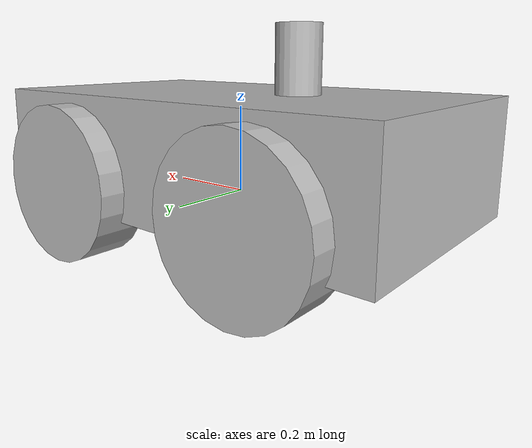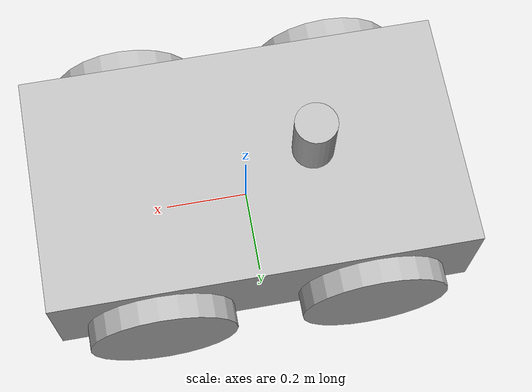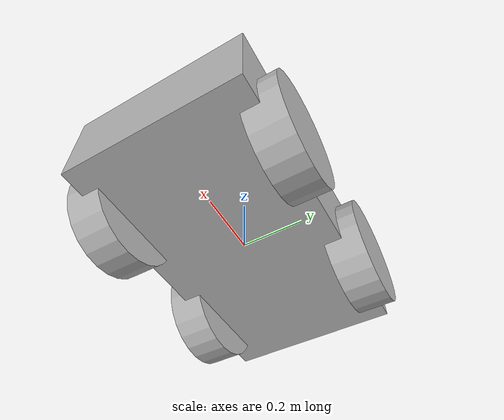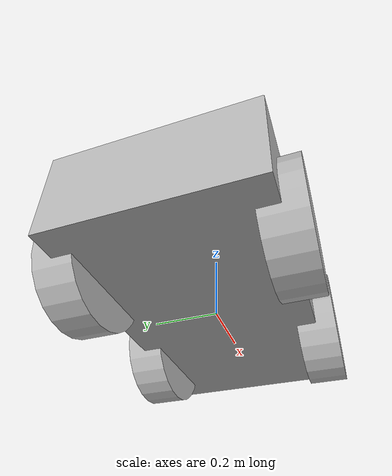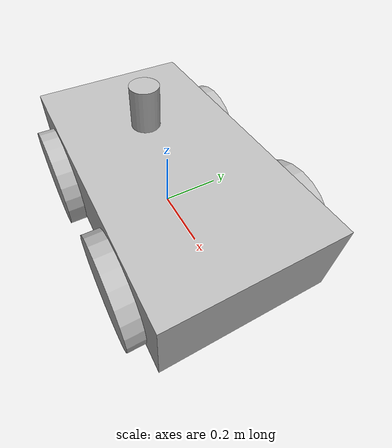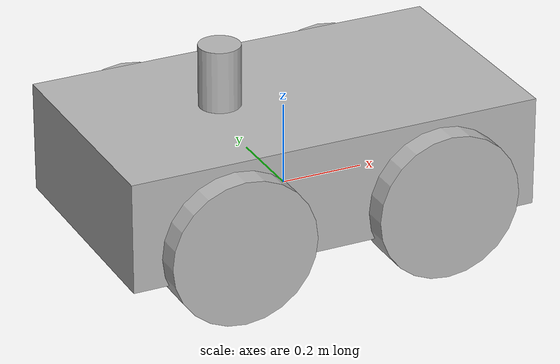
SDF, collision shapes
<?xml version="1.0" ?>
<sdf version="1.5">
  <model name="husky">
    <!-- old values left for reference -->
    <pose>0 0 0 0 0 0</pose>
    <!-- Main Chassis -->
    <link name="base_link">
      <!-- Physics -->
      <collision name="collision">
        <pose>0 0 0.1 0 0 0</pose>
        <geometry>
          <box>
            <size>1.0074 0.5709 0.2675</size>
          </box>
        </geometry>
      </collision>
      <inertial>
        <mass>33.855</mass>
        <pose>-0.0856132 -0.000839955 0.238145 0 0 0</pose>
        <inertia>
          <ixx>2.2343</ixx>
          <ixy>-0.023642</ixy>
          <ixz>0.275174</ixz>
          <iyy>3.42518</iyy>
          <iyz>0.00239624</iyz>
          <izz>2.1241</izz>
        </inertia>
      </inertial>
      <!-- Visual -->
      <!-- Base frame -->
      <visual name="body">
        <pose>0 0 0 0 0 0</pose>
        <geometry>
          <mesh>
            <uri>model://husky_model/meshes/body.dae</uri>
          </mesh>
        </geometry>
      </visual>
    </link>

    <!-- Back Left Wheel -->
    <link name="back_left_wheel">
      <pose>-0.256 0.285475 0.035 0 0 0</pose>
      <inertial>
        <mass>2.6357</mass>
        <pose>0 0 0 0 0 0</pose>
        <inertia>
          <ixx>0.0246688</ixx>
          <ixy>0</ixy>
          <ixz>0</ixz>
          <iyy>0.0246688</iyy>
          <iyz>0</iyz>
          <izz>0.0441058</izz>
        </inertia>
      </inertial>
      <collision name="back_left_wheel_collision">
        <pose>0 0 0 -1.5707 0 0</pose>
        <geometry>
          <cylinder>
            <radius>0.17775</radius>
            <length>0.1143</length>
          </cylinder>
        </geometry>
        <surface>
          <friction>
            <ode>
              <mu>100000.0</mu>
              <mu2>100000.0</mu2>
              <slip1>0.0</slip1>
              <slip2>0.0</slip2>
            </ode>
          </friction>
        </surface>
      </collision>
      <visual name="back_left_wheel">
        <pose>0 0 0 0 0 0</pose>
        <geometry>
          <mesh>
            <uri>model://husky_model/meshes/wheel.dae</uri>
          </mesh>
        </geometry>
      </visual>
    </link>
    <joint name="back_left_joint" type="revolute">
      <sensor name="back_left_sensor" type="force_torque"><force_torque></force_torque></sensor>
      <parent>base_link</parent>
      <child>back_left_wheel</child>
      <axis>
        <xyz>0 1 0</xyz>
        <use_parent_model_frame>true</use_parent_model_frame>
      </axis>
      <physics>
        <provide_feedback>true</provide_feedback>
        <ode>
          <limit>
            <cfm>0.000000</cfm>
            <erp>0.900000</erp>
          </limit>
        </ode>
      </physics>
    </joint>

    <!-- Back Right Wheel -->
    <link name="back_right_wheel">
      <pose>-0.256 -0.285475 0.035 0 0 0</pose>
      <inertial>
        <mass>2.6357</mass>
        <pose>0 0 0 0 0 0</pose>
        <inertia>
          <ixx>0.0246688</ixx>
          <ixy>0</ixy>
          <ixz>0</ixz>
          <iyy>0.0246688</iyy>
          <iyz>0</iyz>
          <izz>0.0441058</izz>
        </inertia>
      </inertial>
      <collision name="back_right_wheel_collision">
        <pose>0 0 0 -1.5707 0 0</pose>
        <geometry>
          <cylinder>
            <radius>0.17775</radius>
            <length>0.1143</length>
          </cylinder>
        </geometry>
        <surface>
          <friction>
            <ode>
              <mu>100000.0</mu>
              <mu2>100000.0</mu2>
              <slip1>0.0</slip1>
              <slip2>0.0</slip2>
            </ode>
          </friction>
        </surface>
      </collision>
      <visual name="back_right_wheel">
        <pose>0 0 0 -3.14159 0 0</pose>
        <geometry>
          <mesh>
            <uri>model://husky_model/meshes/wheel.dae</uri>
          </mesh>
        </geometry>
      </visual>
    </link>
    <joint name="back_right_joint" type="revolute">
      <sensor name="back_right_sensor" type="force_torque"><force_torque></force_torque></sensor>
      <parent>base_link</parent>
      <child>back_right_wheel</child>
      <axis>
        <xyz>0 1 0</xyz>
        <use_parent_model_frame>true</use_parent_model_frame>
      </axis>
      <physics>
        <provide_feedback>true</provide_feedback>
        <ode>
          <limit>
            <cfm>0.000000</cfm>
            <erp>0.900000</erp>
          </limit>
        </ode>
      </physics>
    </joint>

    <!-- Front Left Wheel -->
    <link name="front_left_wheel">
      <pose>0.256 0.285475 0.035 0 0 0</pose>
      <inertial>
        <mass>2.6357</mass>
        <pose>0 0 0 0 0 0</pose>
        <inertia>
          <ixx>0.0246688</ixx>
          <ixy>0</ixy>
          <ixz>0</ixz>
          <iyy>0.0246688</iyy>
          <iyz>0</iyz>
          <izz>0.0441058</izz>
        </inertia>
      </inertial>
      <collision name="front_left_wheel_collision">
        <pose>0 0 0 -1.5707 0 0</pose>
        <geometry>
          <cylinder>
            <radius>0.17775</radius>
            <length>0.1143</length>
          </cylinder>
        </geometry>
        <surface>
          <friction>
            <ode>
              <mu>100000.0</mu>
              <mu2>100000.0</mu2>
              <slip1>0.0</slip1>
              <slip2>0.0</slip2>
            </ode>
          </friction>
        </surface>
      </collision>
      <visual name="front_left_wheel">
        <pose>0 0 0 0 0 0</pose>
        <geometry>
          <mesh>
            <uri>model://husky_model/meshes/wheel.dae</uri>
          </mesh>
        </geometry>
      </visual>
    </link>
    <joint name="front_left_joint" type="revolute">
      <sensor name="front_left_sensor" type="force_torque"><force_torque></force_torque></sensor>
      <parent>base_link</parent>
      <child>front_left_wheel</child>
      <axis>
        <xyz>0 1 0</xyz>
        <use_parent_model_frame>true</use_parent_model_frame>
      </axis>
      <physics>
        <provide_feedback>true</provide_feedback>
        <ode>
          <limit>
            <cfm>0.000000</cfm>
            <erp>0.900000</erp>
          </limit>
        </ode>
      </physics>
    </joint>

    <!-- Front Right Wheel -->
    <link name="front_right_wheel">
      <pose>0.256 -0.285475 0.035 0 0 0</pose>
      <inertial>
        <mass>2.6357</mass>
        <pose>0 0 0 0 0 0</pose>
        <inertia>
          <ixx>0.0246688</ixx>
          <ixy>0</ixy>
          <ixz>0</ixz>
          <iyy>0.0246688</iyy>
          <iyz>0</iyz>
          <izz>0.0441058</izz>
        </inertia>
      </inertial>
      <collision name="front_right_wheel_collision">
        <pose>0 0 0 -1.5707 0 0</pose>
        <geometry>
          <cylinder>
            <radius>0.17775</radius>
            <length>0.1143</length>
          </cylinder>
        </geometry>
        <surface>
          <friction>
            <ode>
              <mu>100000.0</mu>
              <mu2>100000.0</mu2>
              <slip1>0.0</slip1>
              <slip2>0.0</slip2>
            </ode>
          </friction>
        </surface>
      </collision>
      <visual name="front_right_wheel">
        <pose>0 0 0 -3.14159 0 0</pose>
        <geometry>
          <mesh>
            <uri>model://husky_model/meshes/wheel.dae</uri>
          </mesh>
        </geometry>
      </visual>
    </link>
    <joint name="front_right_joint" type="revolute">
      <sensor name="front_right_sensor" type="force_torque"><force_torque></force_torque></sensor>
      <parent>base_link</parent>
      <child>front_right_wheel</child>
      <axis>
        <xyz>0 1 0</xyz>
        <use_parent_model_frame>true</use_parent_model_frame>
      </axis>
      <physics>
        <provide_feedback>true</provide_feedback>
        <ode>
          <limit>
            <cfm>0.000000</cfm>
            <erp>0.900000</erp>
          </limit>
        </ode>
      </physics>
    </joint>

    <!-- eye vision camera -->
    <link name="eye_vision_camera">
      <pose>-0.16 0 0.23 0 0 0</pose>
      <collision name="eye_vision_camera_collision">
        <pose>0 0 0.08 0 0 0</pose>
        <geometry>
          <cylinder>
            <radius>0.05</radius>
            <length>0.15</length>
          </cylinder>
        </geometry>
      </collision>
      <visual name="eye_vision_camera">
        <pose>0 0 0 1.570796327 0 -1.570796327</pose>
        <geometry>
          <mesh>
            <uri>model://husky_model/meshes/eye_vision_camera.dae</uri>
          </mesh>
        </geometry>
      </visual>
      <sensor name="camera" type="camera">
        <pose>0 0 0.132 0 0 0</pose>
        <topic>/husky/camera</topic>
        <camera>
          <horizontal_fov>1.57</horizontal_fov>
          <image>
            <width>320</width>
            <height>240</height>
          </image>
          <clip>
            <near>0.1</near>
            <far>100</far>
          </clip>
        </camera>
        <always_on>1</always_on>
        <update_rate>30</update_rate>
        <visualize>true</visualize>
        <plugin name="mouse_right_eye" filename="libgazebo_ros_camera.so">
          <alwaysOn>true</alwaysOn>
          <updateRate>30.0</updateRate>
          <cameraName>husky</cameraName>
          <imageTopicName>camera</imageTopicName>
          <cameraInfoTopicName>camera_info</cameraInfoTopicName>
          <frameName>camera_link</frameName>
          <hackBaseline>0.07</hackBaseline>
          <distortionK1>0.0</distortionK1>
          <distortionK2>0.0</distortionK2>
          <distortionK3>0.0</distortionK3>
          <distortionT1>0.0</distortionT1>
          <distortionT2>0.0</distortionT2>
        </plugin>
      </sensor>
    </link>
    <joint name="eye_vision_camera_joint" type="revolute">
      <parent>base_link</parent>
      <child>eye_vision_camera</child>
      <axis>
        <xyz>0 0 1</xyz>
        <use_parent_model_frame>true</use_parent_model_frame>
        <limit>
          <lower>0.000000</lower>
          <upper>0.000000</upper>
        </limit>
      </axis>
    </joint>

    <!-- sim dvs camera -->
    <link name="dvs_camera">
      <pose>-0.16 0 0.23 0 0 0</pose>
      <collision name="eye_vision_camera_collision">
        <pose>0 0 0.08 0 0 0</pose>
        <geometry>
          <cylinder>
            <radius>0.05</radius>
            <length>0.15</length>
          </cylinder>
        </geometry>
      </collision>
      <visual name="sim_dvs_camera">
        <pose>0 0 0 1.570796327 0 -1.570796327</pose>
        <geometry>
          <mesh>
            <uri>model://husky_model/meshes/eye_vision_camera.dae</uri>
          </mesh>
        </geometry>
      </visual>
      <sensor name="dvs_sim" type="camera">
        <pose>0 0 0.132 0 0 0</pose>
        <topic>/smi21/event_image</topic>
        <camera>
          <horizontal_fov>1.57</horizontal_fov>
          <image>
            <width>320</width>
            <height>240</height>
          </image>
          <clip>
            <near>0.1</near>
            <far>100</far>
          </clip>
        </camera>
        <always_on>1</always_on>
        <update_rate>30</update_rate>
        <visualize>true</visualize>
      </sensor>
    </link>
    <joint name="dvs_camera_joint" type="revolute">
      <parent>base_link</parent>
      <child>dvs_camera</child>
      <axis>
        <xyz>0 0 1</xyz>
        <use_parent_model_frame>true</use_parent_model_frame>
        <limit>
          <lower>0.000000</lower>
          <upper>0.000000</upper>
        </limit>
      </axis>
    </joint>

    <plugin name="husky_diff_controller" filename="libhusky_gazebo_plugins.so">
      <alwaysOn>true</alwaysOn>
      <updateRate>100.0</updateRate>
      <backLeftJoint>back_left_joint</backLeftJoint>
      <backRightJoint>back_right_joint</backRightJoint>
      <frontLeftJoint>front_left_joint</frontLeftJoint>
      <frontRightJoint>front_right_joint</frontRightJoint>
      <wheelSeparation>0.5709</wheelSeparation>
      <wheelDiameter>0.3555</wheelDiameter>
      <torque>35</torque>
    </plugin>

  </model>
</sdf>
